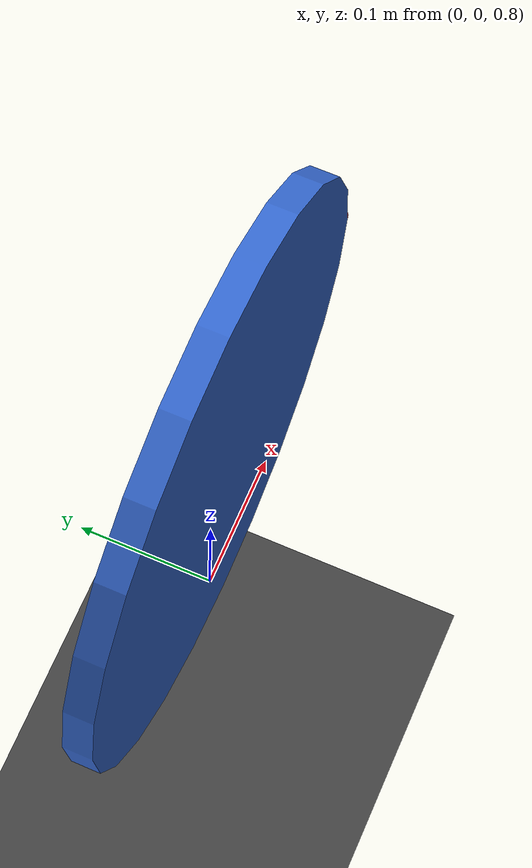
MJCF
<mujoco model="rolling_disk">
    <!-- Compiler settings -->
    <compiler angle="radian" coordinate="local"/>

    <!-- Simulation options -->
    <option timestep="0.001" gravity="0 0 -9.81" integrator="Euler">
        <flag warmstart="disable"/>
    </option>

    <!-- Contact parameters matching custom implementation -->
    <default>
        <geom friction="0.0 0.0 0.01" condim="6" solimp="0.99 0.995 0.001" solref="0.01 1.0"/>
    </default>

    <!-- Assets (materials for visualization) -->
    <asset>
        <texture type="skybox" builtin="gradient" rgb1="0.3 0.5 0.7" rgb2="0 0 0" width="512" height="512"/>
        <texture name="grid" type="2d" builtin="checker" rgb1="0.2 0.2 0.2" rgb2="0.3 0.3 0.3" width="512" height="512"/>
        <material name="grid" texture="grid" texrepeat="1 1" texuniform="true" reflectance="0.2"/>
    </asset>

    <!-- World body (fixed objects) -->
    <worldbody>
        <!-- Ground plane -->
        <geom name="ground" type="plane" size="5 5 0.1" rgba="0.5 0.5 0.5 1" material="grid"/>

        <!-- Light source -->
        <light directional="true" diffuse="0.8 0.8 0.8" specular="0.2 0.2 0.2" pos="0 0 5" dir="0 0 -1"/>

        <!-- Thin disk (wheel) -->
        <body name="disk" pos="0 0 1.0">
            <inertial pos="0 0 0" mass="1.0" diaginertia="0.010033 0.020000 0.010033"/>
            <!-- Disk geometry: cylinder with axle along Y-axis -->
            <geom name="disk_geom" type="cylinder" size="0.2 0.01" euler="1.57079632679 0 0" rgba="0.2 0.4 0.8 1"/>
            <!-- Visual indicator to show disk rotation -->
            <geom name="disk_indicator" type="capsule" fromto="0 0 0  0.2 0 0" size="0.01" density="0" contype="0" conaffinity="0" rgba="1 0.2 0.2 1"/>

            <!-- Initial velocity (set via qvel in simulation) -->
            <freejoint/>
        </body>
    </worldbody>
</mujoco>
